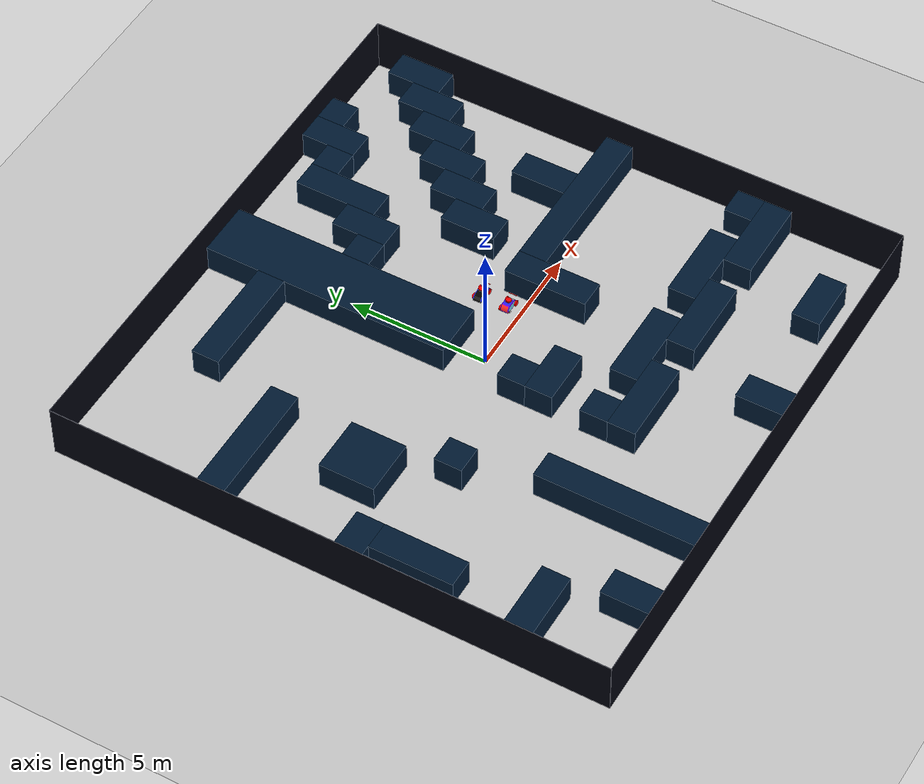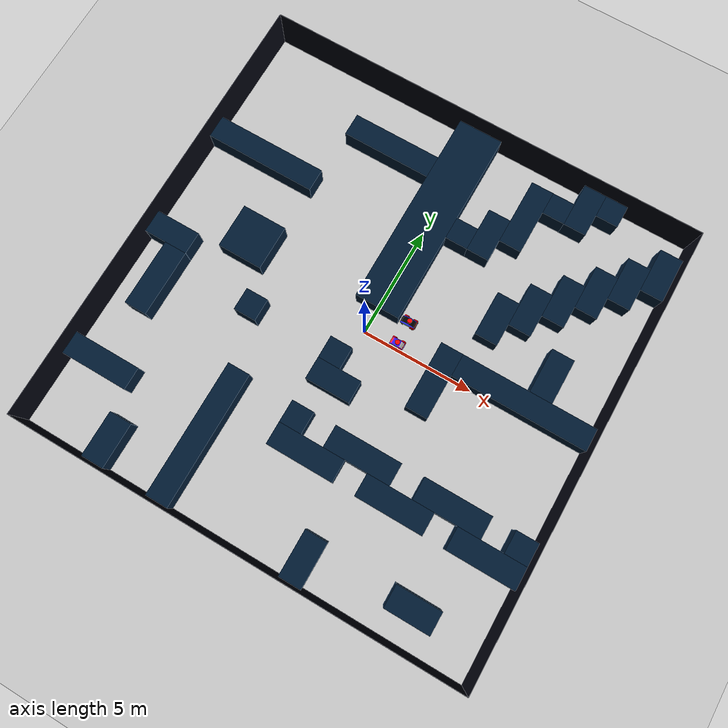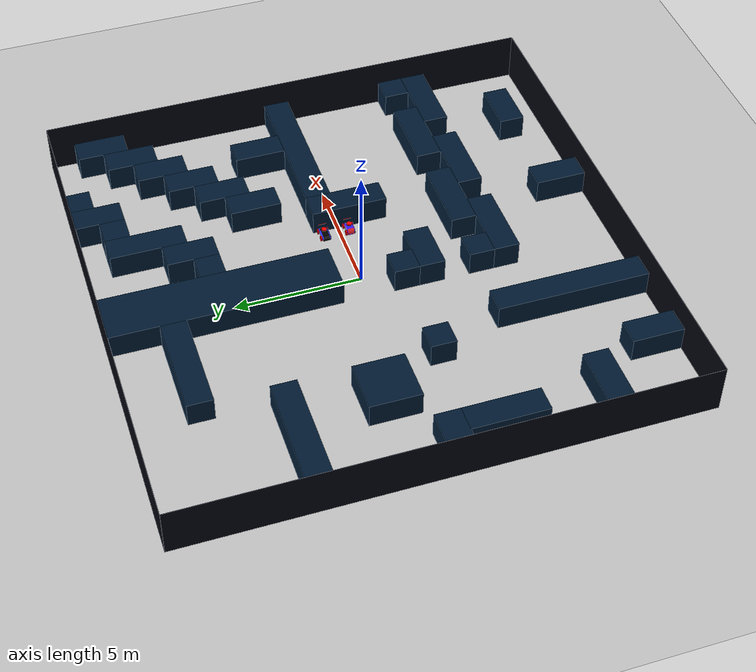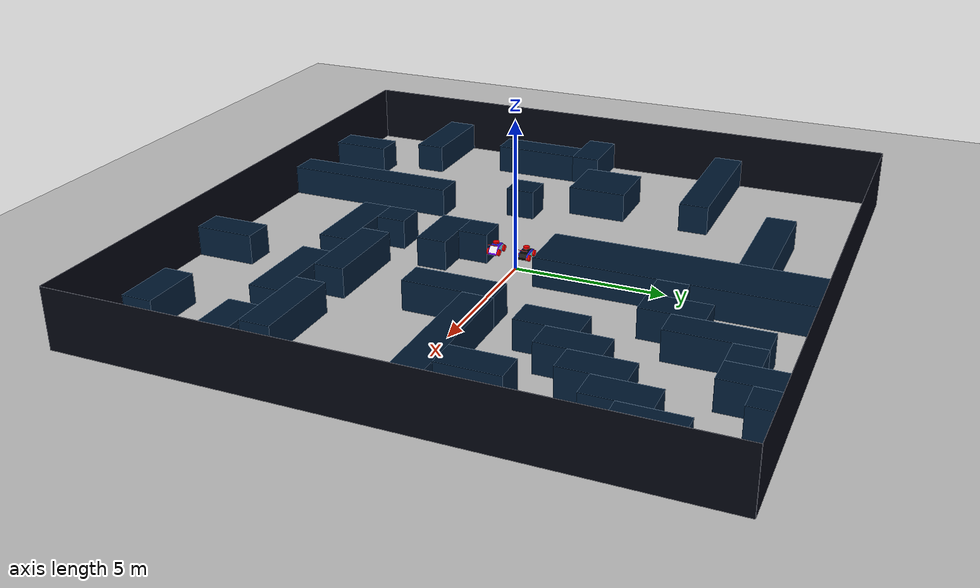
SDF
<?xml version="1.0"?>
<sdf version='1.8'>
    <world name='maze'>
        <physics name='1ms' type='ignored'>
            <max_step_size>0.003</max_step_size>
            <real_time_factor>1</real_time_factor>
            <real_time_update_rate>1000</real_time_update_rate>
        </physics>

        <plugin name="gz::sim::systems::Physics" filename="gz-sim-physics-system" />
        <plugin name="gz::sim::systems::UserCommands" filename="gz-sim-user-commands-system" />
        <plugin name="gz::sim::systems::SceneBroadcaster" filename="gz-sim-scene-broadcaster-system" />
        <plugin name="gz::sim::systems::Contact" filename="gz-sim-contact-system" />
        <plugin name="gz::sim::systems::Sensors" filename="gz-sim-sensors-system">
            <render_engine>ogre2</render_engine>
        </plugin>

        <light name='sun' type='directional'>
            <cast_shadows>1</cast_shadows>
            <pose>0 0 10 0 -0 0</pose>
            <diffuse>0.8 0.8 0.8 1</diffuse>
            <specular>0.2 0.2 0.2 1</specular>
            <attenuation>
                <range>1000</range>
                <constant>0.90000000000000002</constant>
                <linear>0.01</linear>
                <quadratic>0.001</quadratic>
            </attenuation>
            <direction>-0.5 0.1 -0.9</direction>
            <spot>
                <inner_angle>0</inner_angle>
                <outer_angle>0</outer_angle>
                <falloff>0</falloff>
            </spot>
        </light>
        <gravity>0 0 -9.8</gravity>
        <magnetic_field>6e-06 2.3e-05 -4.2e-05</magnetic_field>
        <atmosphere type='adiabatic' />
        <scene>
            <ambient>0.4 0.4 0.4 1</ambient>
            <background>0.7 0.7 0.7 1</background>
            <shadows>1</shadows>
        </scene>
        <model name='ground_plane'>
              <static>1</static>
            <link name='link'>
                <collision name='collision'>
                    <geometry>
                        <plane>
                            <normal>0 0 1</normal>
                            <size>100 100</size>
                        </plane>
                    </geometry>
                    <surface>
                        <friction>
                            <ode />
                        </friction>
                        <bounce />
                        <contact />
                    </surface>
                </collision>
                <visual name='visual'>
                    <geometry>
                        <plane>
                            <normal>0 0 1</normal>
                            <size>100 100</size>
                        </plane>
                    </geometry>
                    <material>
                        <ambient>0.8 0.8 0.8 1</ambient>
                        <diffuse>0.8 0.8 0.8 1</diffuse>
                        <specular>0.8 0.8 0.8 1</specular>
                    </material>
                </visual>
            </link>
            <pose>0 0 0 0 -0 0</pose>
        </model>

        <model name='border'>
            <pose>0 0 1 0 0 0</pose>
              <static>1</static>
            <link name='wall1'>
                <pose>-10.005 0 0 0 0 0</pose>

                <collision name='wall1_collision'>
                    <geometry>
                        <box>
                            <size>0.01 20 2</size>
                        </box>
                    </geometry>
                </collision>
                <visual name='wall1_visual'>
                    <geometry>
                        <box>
                            <size>0.01 20 2</size>
                        </box>
                    </geometry>
                    <material>
                        <ambient>0.1 0.1 0.1 1</ambient>
                        <diffuse>0 0.01 0.05 1</diffuse>
                        <specular>0 0.01 0.05 1</specular>
                    </material>
                </visual>
            </link>
            <link name='wall2'>
                <pose>10.005 0 0 0 0 0</pose>

                <collision name='wall2_collision'>
                    <geometry>
                        <box>
                            <size>0.01 20 2</size>
                        </box>
                    </geometry>
                </collision>
                <visual name='wall2_visual'>
                    <geometry>
                        <box>
                            <size>0.01 20 2</size>
                        </box>
                    </geometry>
                    <material>
                        <ambient>0.1 0.1 0.1 1</ambient>
                        <diffuse>0 0.01 0.05 1</diffuse>
                        <specular>0 0.01 0.05 1</specular>
                    </material>
                </visual>
            </link>
            <link name='wall3'>
                <pose>0 10.005 0 0 0 0</pose>

                <collision name='wall3_collision'>
                    <geometry>
                        <box>
                            <size>20 0.01 2</size>
                        </box>
                    </geometry>
                </collision>
                <visual name='wall3_visual'>
                    <geometry>
                        <box>
                            <size>20 0.01 2</size>
                        </box>
                    </geometry>
                    <material>
                        <ambient>0.1 0.1 0.1 1</ambient>
                        <diffuse>0 0.01 0.05 1</diffuse>
                        <specular>0 0.01 0.05 1</specular>
                    </material>
                </visual>
            </link>
            <link name='wall4'>
                <pose>0 -10.005 0 0 0 0</pose>

                <collision name='wall4_collision'>
                    <geometry>
                        <box>
                            <size>20 0.01 2</size>
                        </box>
                    </geometry>
                </collision>
                <visual name='wall4_visual'>
                    <geometry>
                        <box>
                            <size>20 0.01 2</size>
                        </box>
                    </geometry>
                    <material>
                        <ambient>0.1 0.1 0.1 1</ambient>
                        <diffuse>0 0.01 0.05 1</diffuse>
                        <specular>0 0.01 0.05 1</specular>
                    </material>
                </visual>
            </link>
        </model>

        <model name='obstacles'>
            <pose>0 0 0.5 0 0 0</pose>
              <static>1</static>
            <link name='wall1'>
                <pose>-6.5 -9 0 0 0 0</pose>

                <collision name='wall1_collision'>
                    <geometry>
                        <box>
                            <size>1 2 1</size>
                        </box>
                    </geometry>
                </collision>
                <visual name='wall1_visual'>
                    <geometry>
                        <box>
                            <size>1 2 1</size>
                        </box>
                    </geometry>
                    <material>
                        <ambient>0.1 0.1 0.1 1</ambient>
                        <diffuse>0 0.1 0.2 1</diffuse>
                        <specular>0 0.01 0.05 1</specular>
                    </material>
                </visual>
            </link>

            <link name='wall2'>
                <pose>-8.5 -6.5 0 0 0 0</pose>

                <collision name='wall2_collision'>
                    <geometry>
                        <box>
                            <size>3 1 1</size>
                        </box>
                    </geometry>
                </collision>
                <visual name='wall2_visual'>
                    <geometry>
                        <box>
                            <size>3 1 1</size>
                        </box>
                    </geometry>
                    <material>
                        <ambient>0.1 0.1 0.1 1</ambient>
                        <diffuse>0 0.1 0.2 1</diffuse>
                        <specular>0 0.01 0.05 1</specular>
                    </material>
                </visual>
            </link>

            <link name='wall3'>
                <pose>-3.5 -7 0 0 0 0</pose>

                <collision name='wall3_collision'>
                    <geometry>
                        <box>
                            <size>1 6 1</size>
                        </box>
                    </geometry>
                </collision>
                <visual name='wall3_visual'>
                    <geometry>
                        <box>
                            <size>1 6 1</size>
                        </box>
                    </geometry>
                    <material>
                        <ambient>0.1 0.1 0.1 1</ambient>
                        <diffuse>0 0.1 0.2 1</diffuse>
                        <specular>0 0.01 0.05 1</specular>
                    </material>
                </visual>
            </link>

            <link name='wall4'>
                <pose>2.5 -9 0 0 0 0</pose>

                <collision name='wall4_collision'>
                    <geometry>
                        <box>
                            <size>1 2 1</size>
                        </box>
                    </geometry>
                </collision>
                <visual name='wall4_visual'>
                    <geometry>
                        <box>
                            <size>1 2 1</size>
                        </box>
                    </geometry>
                    <material>
                        <ambient>0.1 0.1 0.1 1</ambient>
                        <diffuse>0 0.1 0.2 1</diffuse>
                        <specular>0 0.01 0.05 1</specular>
                    </material>
                </visual>
            </link>

            <link name='wall5'>
                <pose>7 -8.5 0 0 0 0</pose>

                <collision name='wall5_collision'>
                    <geometry>
                        <box>
                            <size>2 1 1</size>
                        </box>
                    </geometry>
                </collision>
                <visual name='wall5_visual'>
                    <geometry>
                        <box>
                            <size>2 1 1</size>
                        </box>
                    </geometry>
                    <material>
                        <ambient>0.1 0.1 0.1 1</ambient>
                        <diffuse>0 0.1 0.2 1</diffuse>
                        <specular>0 0.01 0.05 1</specular>
                    </material>
                </visual>
            </link>

            <link name='wall6'>
                <pose>-9 -0.5 0 0 0 0</pose>

                <collision name='wall6_collision'>
                    <geometry>
                        <box>
                            <size>2 1 1</size>
                        </box>
                    </geometry>
                </collision>
                <visual name='wall6_visual'>
                    <geometry>
                        <box>
                            <size>2 1 1</size>
                        </box>
                    </geometry>
                    <material>
                        <ambient>0.1 0.1 0.1 1</ambient>
                        <diffuse>0 0.1 0.2 1</diffuse>
                        <specular>0 0.01 0.05 1</specular>
                    </material>
                </visual>
            </link>

            <link name='wall7'>
                <pose>-8.5 -2.5 0 0 0 0</pose>

                <collision name='wall7_collision'>
                    <geometry>
                        <box>
                            <size>1 3 1</size>
                        </box>
                    </geometry>
                </collision>
                <visual name='wall7_visual'>
                    <geometry>
                        <box>
                            <size>1 3 1</size>
                        </box>
                    </geometry>
                    <material>
                        <ambient>0.1 0.1 0.1 1</ambient>
                        <diffuse>0 0.1 0.2 1</diffuse>
                        <specular>0 0.01 0.05 1</specular>
                    </material>
                </visual>
            </link>

            <link name='wall8'>
                <pose>-4.5 -1.5 0 0 0 0</pose>

                <collision name='wall8_collision'>
                    <geometry>
                        <box>
                            <size>1 1 1</size>
                        </box>
                    </geometry>
                </collision>
                <visual name='wall8_visual'>
                    <geometry>
                        <box>
                            <size>1 1 1</size>
                        </box>
                    </geometry>
                    <material>
                        <ambient>0.1 0.1 0.1 1</ambient>
                        <diffuse>0 0.1 0.2 1</diffuse>
                        <specular>0 0.01 0.05 1</specular>
                    </material>
                </visual>
            </link>

            <link name='wall9'>
                <pose>-6 1 0 0 0 0</pose>

                <collision name='wall9_collision'>
                    <geometry>
                        <box>
                            <size>2 2 1</size>
                        </box>
                    </geometry>
                </collision>
                <visual name='wall9_visual'>
                    <geometry>
                        <box>
                            <size>2 2 1</size>
                        </box>
                    </geometry>
                    <material>
                        <ambient>0.1 0.1 0.1 1</ambient>
                        <diffuse>0 0.1 0.2 1</diffuse>
                        <specular>0 0.01 0.05 1</specular>
                    </material>
                </visual>
            </link>

            <link name='wall10'>
                <pose>-7.5 4.5 0 0 0 0</pose>

                <collision name='wall10_collision'>
                    <geometry>
                        <box>
                            <size>5 1 1</size>
                        </box>
                    </geometry>
                </collision>
                <visual name='wall10_visual'>
                    <geometry>
                        <box>
                            <size>5 1 1</size>
                        </box>
                    </geometry>
                    <material>
                        <ambient>0.1 0.1 0.1 1</ambient>
                        <diffuse>0 0.1 0.2 1</diffuse>
                        <specular>0 0.01 0.05 1</specular>
                    </material>
                </visual>
            </link>

            <link name='wall11'>
                <pose>-3 7.5 0 0 0 0</pose>

                <collision name='wall11_collision'>
                    <geometry>
                        <box>
                            <size>4 1 1</size>
                        </box>
                    </geometry>
                </collision>
                <visual name='wall11_visual'>
                    <geometry>
                        <box>
                            <size>4 1 1</size>
                        </box>
                    </geometry>
                    <material>
                        <ambient>0.1 0.1 0.1 1</ambient>
                        <diffuse>0 0.1 0.2 1</diffuse>
                        <specular>0 0.01 0.05 1</specular>
                    </material>
                </visual>
            </link>
            <link name='wall12'>
                <pose>0 5.5 0 0 0 0</pose>

                <collision name='wall12_collision'>
                    <geometry>
                        <box>
                            <size>2 9 1</size>
                        </box>
                    </geometry>
                </collision>
                <visual name='wall12_visual'>
                    <geometry>
                        <box>
                            <size>2 9 1</size>
                        </box>
                    </geometry>
                    <material>
                        <ambient>0.1 0.1 0.1 1</ambient>
                        <diffuse>0 0.1 0.2 1</diffuse>
                        <specular>0 0.01 0.05 1</specular>
                    </material>
                </visual>
            </link>

            <link name='wall13'>
                <pose>0 -2.5 0 0 0 0</pose>

                <collision name='wall13_collision'>
                    <geometry>
                        <box>
                            <size>2 1 1</size>
                        </box>
                    </geometry>
                </collision>
                <visual name='wall13_visual'>
                    <geometry>
                        <box>
                            <size>2 1 1</size>
                        </box>
                    </geometry>
                    <material>
                        <ambient>0.1 0.1 0.1 1</ambient>
                        <diffuse>0 0.1 0.2 1</diffuse>
                        <specular>0 0.01 0.05 1</specular>
                    </material>
                </visual>
            </link>

            <link name='wall14'>
                <pose>-0.5 -1.5 0 0 0 0</pose>

                <collision name='wall14_collision'>
                    <geometry>
                        <box>
                            <size>1 1 1</size>
                        </box>
                    </geometry>
                </collision>
                <visual name='wall14_visual'>
                    <geometry>
                        <box>
                            <size>1 1 1</size>
                        </box>
                    </geometry>
                    <material>
                        <ambient>0.1 0.1 0.1 1</ambient>
                        <diffuse>0 0.1 0.2 1</diffuse>
                        <specular>0 0.01 0.05 1</specular>
                    </material>
                </visual>
            </link>

            <link name='wall15'>
                <pose>-0.5 -4.5 0 0 0 0</pose>

                <collision name='wall15_collision'>
                    <geometry>
                        <box>
                            <size>1 1 1</size>
                        </box>
                    </geometry>
                </collision>
                <visual name='wall15_visual'>
                    <geometry>
                        <box>
                            <size>1 1 1</size>
                        </box>
                    </geometry>
                    <material>
                        <ambient>0.1 0.1 0.1 1</ambient>
                        <diffuse>0 0.1 0.2 1</diffuse>
                        <specular>0 0.01 0.05 1</specular>
                    </material>
                </visual>
            </link>

            <link name='wall16'>
                <pose>0.5 -5.5 0 0 0 0</pose>

                <collision name='wall16_collision'>
                    <geometry>
                        <box>
                            <size>3 1 1</size>
                        </box>
                    </geometry>
                </collision>
                <visual name='wall16_visual'>
                    <geometry>
                        <box>
                            <size>3 1 1</size>
                        </box>
                    </geometry>
                    <material>
                        <ambient>0.1 0.1 0.1 1</ambient>
                        <diffuse>0 0.1 0.2 1</diffuse>
                        <specular>0 0.01 0.05 1</specular>
                    </material>
                </visual>
            </link>

            <link name='wall17'>
                <pose>2.5 -4.5 0 0 0 0</pose>

                <collision name='wall17_collision'>
                    <geometry>
                        <box>
                            <size>3 1 1</size>
                        </box>
                    </geometry>
                </collision>
                <visual name='wall17_visual'>
                    <geometry>
                        <box>
                            <size>3 1 1</size>
                        </box>
                    </geometry>
                    <material>
                        <ambient>0.1 0.1 0.1 1</ambient>
                        <diffuse>0 0.1 0.2 1</diffuse>
                        <specular>0 0.01 0.05 1</specular>
                    </material>
                </visual>
            </link>

            <link name='wall18'>
                <pose>4.5 -5.5 0 0 0 0</pose>

                <collision name='wall18_collision'>
                    <geometry>
                        <box>
                            <size>3 1 1</size>
                        </box>
                    </geometry>
                </collision>
                <visual name='wall18_visual'>
                    <geometry>
                        <box>
                            <size>3 1 1</size>
                        </box>
                    </geometry>
                    <material>
                        <ambient>0.1 0.1 0.1 1</ambient>
                        <diffuse>0 0.1 0.2 1</diffuse>
                        <specular>0 0.01 0.05 1</specular>
                    </material>
                </visual>
            </link>

            <link name='wall19'>
                <pose>6.5 -4.5 0 0 0 0</pose>

                <collision name='wall19_collision'>
                    <geometry>
                        <box>
                            <size>3 1 1</size>
                        </box>
                    </geometry>
                </collision>
                <visual name='wall19_visual'>
                    <geometry>
                        <box>
                            <size>3 1 1</size>
                        </box>
                    </geometry>
                    <material>
                        <ambient>0.1 0.1 0.1 1</ambient>
                        <diffuse>0 0.1 0.2 1</diffuse>
                        <specular>0 0.01 0.05 1</specular>
                    </material>
                </visual>
            </link>

            <link name='wall20'>
                <pose>8.5 -5.5 0 0 0 0</pose>

                <collision name='wall20_collision'>
                    <geometry>
                        <box>
                            <size>3 1 1</size>
                        </box>
                    </geometry>
                </collision>
                <visual name='wall20_visual'>
                    <geometry>
                        <box>
                            <size>3 1 1</size>
                        </box>
                    </geometry>
                    <material>
                        <ambient>0.1 0.1 0.1 1</ambient>
                        <diffuse>0 0.1 0.2 1</diffuse>
                        <specular>0 0.01 0.05 1</specular>
                    </material>
                </visual>
            </link>

            <link name='wall21'>
                <pose>9.5 -4.5 0 0 0 0</pose>

                <collision name='wall21_collision'>
                    <geometry>
                        <box>
                            <size>1 1 1</size>
                        </box>
                    </geometry>
                </collision>
                <visual name='wall21_visual'>
                    <geometry>
                        <box>
                            <size>1 1 1</size>
                        </box>
                    </geometry>
                    <material>
                        <ambient>0.1 0.1 0.1 1</ambient>
                        <diffuse>0 0.1 0.2 1</diffuse>
                        <specular>0 0.01 0.05 1</specular>
                    </material>
                </visual>
            </link>

            <link name='wall22'>
                <pose>3.5 -0.5 0 0 0 0</pose>

                <collision name='wall22_collision'>
                    <geometry>
                        <box>
                            <size>1 3 1</size>
                        </box>
                    </geometry>
                </collision>
                <visual name='wall22_visual'>
                    <geometry>
                        <box>
                            <size>1 3 1</size>
                        </box>
                    </geometry>
                    <material>
                        <ambient>0.1 0.1 0.1 1</ambient>
                        <diffuse>0 0.1 0.2 1</diffuse>
                        <specular>0 0.01 0.05 1</specular>
                    </material>
                </visual>
            </link>

            <link name='wall23'>
                <pose>7 0.5 0 0 0 0</pose>

                <collision name='wall23_collision'>
                    <geometry>
                        <box>
                            <size>6 1 1</size>
                        </box>
                    </geometry>
                </collision>
                <visual name='wall23_visual'>
                    <geometry>
                        <box>
                            <size>6 1 1</size>
                        </box>
                    </geometry>
                    <material>
                        <ambient>0.1 0.1 0.1 1</ambient>
                        <diffuse>0 0.1 0.2 1</diffuse>
                        <specular>0 0.01 0.05 1</specular>
                    </material>
                </visual>
            </link>

            <link name='wall24'>
                <pose>7.5 2 0 0 0 0</pose>

                <collision name='wall24_collision'>
                    <geometry>
                        <box>
                            <size>1 2 1</size>
                        </box>
                    </geometry>
                </collision>
                <visual name='wall24_visual'>
                    <geometry>
                        <box>
                            <size>1 2 1</size>
                        </box>
                    </geometry>
                    <material>
                        <ambient>0.1 0.1 0.1 1</ambient>
                        <diffuse>0 0.1 0.2 1</diffuse>
                        <specular>0 0.01 0.05 1</specular>
                    </material>
                </visual>
            </link>

            <link name='wall25'>
                <pose>1.5 5.5 0 0 0 0</pose>

                <collision name='wall25_collision'>
                    <geometry>
                        <box>
                            <size>1 1 1</size>
                        </box>
                    </geometry>
                </collision>
                <visual name='wall25_visual'>
                    <geometry>
                        <box>
                            <size>1 1 1</size>
                        </box>
                    </geometry>
                    <material>
                        <ambient>0.1 0.1 0.1 1</ambient>
                        <diffuse>0 0.1 0.2 1</diffuse>
                        <specular>0 0.01 0.05 1</specular>
                    </material>
                </visual>
            </link>

            <link name='wall26'>
                <pose>2.5 6 0 0 0 0</pose>

                <collision name='wall26_collision'>
                    <geometry>
                        <box>
                            <size>1 2 1</size>
                        </box>
                    </geometry>
                </collision>
                <visual name='wall26_visual'>
                    <geometry>
                        <box>
                            <size>1 2 1</size>
                        </box>
                    </geometry>
                    <material>
                        <ambient>0.1 0.1 0.1 1</ambient>
                        <diffuse>0 0.1 0.2 1</diffuse>
                        <specular>0 0.01 0.05 1</specular>
                    </material>
                </visual>
            </link>

            <link name='wall27'>
                <pose>3.5 7.5 0 0 0 0</pose>

                <collision name='wall27_collision'>
                    <geometry>
                        <box>
                            <size>1 3 1</size>
                        </box>
                    </geometry>
                </collision>
                <visual name='wall27_visual'>
                    <geometry>
                        <box>
                            <size>1 3 1</size>
                        </box>
                    </geometry>
                    <material>
                        <ambient>0.1 0.1 0.1 1</ambient>
                        <diffuse>0 0.1 0.2 1</diffuse>
                        <specular>0 0.01 0.05 1</specular>
                    </material>
                </visual>
            </link>

            <link name='wall28'>
                <pose>4.5 8.5 0 0 0 0</pose>

                <collision name='wall28_collision'>
                    <geometry>
                        <box>
                            <size>1 1 1</size>
                        </box>
                    </geometry>
                </collision>
                <visual name='wall28_visual'>
                    <geometry>
                        <box>
                            <size>1 1 1</size>
                        </box>
                    </geometry>
                    <material>
                        <ambient>0.1 0.1 0.1 1</ambient>
                        <diffuse>0 0.1 0.2 1</diffuse>
                        <specular>0 0.01 0.05 1</specular>
                    </material>
                </visual>
            </link>

            <link name='wall29'>
                <pose>5.5 9 0 0 0 0</pose>

                <collision name='wall29_collision'>
                    <geometry>
                        <box>
                            <size>1 2 1</size>
                        </box>
                    </geometry>
                </collision>
                <visual name='wall29_visual'>
                    <geometry>
                        <box>
                            <size>1 2 1</size>
                        </box>
                    </geometry>
                    <material>
                        <ambient>0.1 0.1 0.1 1</ambient>
                        <diffuse>0 0.1 0.2 1</diffuse>
                        <specular>0 0.01 0.05 1</specular>
                    </material>
                </visual>
            </link>

            <link name='wall30'>
                <pose>6.5 9.5 0 0 0 0</pose>

                <collision name='wall30_collision'>
                    <geometry>
                        <box>
                            <size>1 1 1</size>
                        </box>
                    </geometry>
                </collision>
                <visual name='wall30_visual'>
                    <geometry>
                        <box>
                            <size>1 1 1</size>
                        </box>
                    </geometry>
                    <material>
                        <ambient>0.1 0.1 0.1 1</ambient>
                        <diffuse>0 0.1 0.2 1</diffuse>
                        <specular>0 0.01 0.05 1</specular>
                    </material>
                </visual>
            </link>

            <link name='wall31'>
                <pose>4.5 3 0 0 0 0</pose>

                <collision name='wall31_collision'>
                    <geometry>
                        <box>
                            <size>1 2 1</size>
                        </box>
                    </geometry>
                </collision>
                <visual name='wall31_visual'>
                    <geometry>
                        <box>
                            <size>1 2 1</size>
                        </box>
                    </geometry>
                    <material>
                        <ambient>0.1 0.1 0.1 1</ambient>
                        <diffuse>0 0.1 0.2 1</diffuse>
                        <specular>0 0.01 0.05 1</specular>
                    </material>
                </visual>
            </link>

            <link name='wall32'>
                <pose>5.5 4 0 0 0 0</pose>

                <collision name='wall32_collision'>
                    <geometry>
                        <box>
                            <size>1 2 1</size>
                        </box>
                    </geometry>
                </collision>
                <visual name='wall32_visual'>
                    <geometry>
                        <box>
                            <size>1 2 1</size>
                        </box>
                    </geometry>
                    <material>
                        <ambient>0.1 0.1 0.1 1</ambient>
                        <diffuse>0 0.1 0.2 1</diffuse>
                        <specular>0 0.01 0.05 1</specular>
                    </material>
                </visual>
            </link>

            <link name='wall33'>
                <pose>6.5 5 0 0 0 0</pose>

                <collision name='wall33_collision'>
                    <geometry>
                        <box>
                            <size>1 2 1</size>
                        </box>
                    </geometry>
                </collision>
                <visual name='wall33_visual'>
                    <geometry>
                        <box>
                            <size>1 2 1</size>
                        </box>
                    </geometry>
                    <material>
                        <ambient>0.1 0.1 0.1 1</ambient>
                        <diffuse>0 0.1 0.2 1</diffuse>
                        <specular>0 0.01 0.05 1</specular>
                    </material>
                </visual>
            </link>

            <link name='wall34'>
                <pose>7.5 6 0 0 0 0</pose>

                <collision name='wall34_collision'>
                    <geometry>
                        <box>
                            <size>1 2 1</size>
                        </box>
                    </geometry>
                </collision>
                <visual name='wall34_visual'>
                    <geometry>
                        <box>
                            <size>1 2 1</size>
                        </box>
                    </geometry>
                    <material>
                        <ambient>0.1 0.1 0.1 1</ambient>
                        <diffuse>0 0.1 0.2 1</diffuse>
                        <specular>0 0.01 0.05 1</specular>
                    </material>
                </visual>
            </link>

            <link name='wall35'>
                <pose>8.5 7 0 0 0 0</pose>

                <collision name='wall35_collision'>
                    <geometry>
                        <box>
                            <size>1 2 1</size>
                        </box>
                    </geometry>
                </collision>
                <visual name='wall35_visual'>
                    <geometry>
                        <box>
                            <size>1 2 1</size>
                        </box>
                    </geometry>
                    <material>
                        <ambient>0.1 0.1 0.1 1</ambient>
                        <diffuse>0 0.1 0.2 1</diffuse>
                        <specular>0 0.01 0.05 1</specular>
                    </material>
                </visual>
            </link>

            <link name='wall36'>
                <pose>9.5 8 0 0 0 0</pose>

                <collision name='wall36_collision'>
                    <geometry>
                        <box>
                            <size>1 2 1</size>
                        </box>
                    </geometry>
                </collision>
                <visual name='wall36_visual'>
                    <geometry>
                        <box>
                            <size>1 2 1</size>
                        </box>
                    </geometry>
                    <material>
                        <ambient>0.1 0.1 0.1 1</ambient>
                        <diffuse>0 0.1 0.2 1</diffuse>
                        <specular>0 0.01 0.05 1</specular>
                    </material>
                </visual>
            </link>
        </model>

        <model name="car_mode">
            <self_collide>false</self_collide>
            <pose>1 0 1 0 0 0</pose>
            <include merge="true">
                <uri>package://car_mode/models/car.sdf</uri>
            </include>
        </model>
        <model name="joker_mode">
            <self_collide>false</self_collide>
            <pose>1 1 1 0 0 0</pose>
            <include merge="true">
                <uri>package://car_mode/models/joker.sdf</uri>
            </include>
        </model>
    </world>
</sdf>

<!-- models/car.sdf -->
<sdf version="1.8">

        <model name='Joker' canonical_link='base_link'>
            <link name='base_link'>
                <pose relative_to='__model__'>0.5 0 0.4 0 0 0</pose>
                <inertial>
                    <inertia>
                        <ixx>0.001</ixx>
                        <ixy>0.000</ixy>
                        <ixz>0.000</ixz>
                        <iyy>0.001</iyy>
                        <iyz>0.000</iyz>
                        <izz>0.001</izz>
                    </inertia>
                    <mass>0.05</mass>
                </inertial>
                <visual name='visual'>
                    <pose >0 -0.005 -0.17 0 0 0.02</pose>
                    <geometry>
                        <mesh>
                            <uri>package://car_mode/meshes/car.dae</uri>
                        </mesh>
                    </geometry>
                </visual>
                <collision name='collision'> <!--todo: describe why we need the collision-->
                    <geometry>
                        <box>
                            <size>0.6 0.3 0.25</size>
                        </box>
                    </geometry>
                </collision>
            </link>

            <link name='base_camera'>
                <pose relative_to="base_link">0.29 0 0.155 0 0 0</pose>
                <sensor name="camera" type="camera">
                    <pose relative_to='base_camera'>0.01 0 0 0 0 0</pose>
                    <always_on>true</always_on>
                    <visualize>true</visualize>
                    <update_rate>30</update_rate>
                    <topic>camera/image_raw</topic>
                    <camera name="intel_realsense_r200">
                    <horizontal_fov>1.02974</horizontal_fov>
                    <gz_frame_id>base_camera</gz_frame_id>
                    <image>
                        <width>1920</width>
                        <height>1080</height>
                        <format>R8G8B8</format>
                    </image>
                    <clip>
                        <near>0.02</near>
                        <far>300</far>
                    </clip>
                    <noise>
                        <type>gaussian</type>
                        <mean>0.0</mean>
                        <stddev>0.007</stddev>
                    </noise>
                    </camera>
                </sensor>
                <inertial>
                    <mass>0.2</mass>
                    <inertia>
                        <ixx>0.03</ixx>
                        <ixy>0</ixy>
                        <ixz>0</ixz>
                        <iyy>0.03</iyy>
                        <iyz>0</iyz>
                        <izz>0.003</izz>
                    </inertia>
                </inertial>
                <visual name='visual'>
                     <visibility_flags>0</visibility_flags>
                    <geometry>
                        <box>
                            <size>0.02 0.3 0.01</size>
                        </box>
                    </geometry>
                    <material>
                        <ambient>1.0 0.0 0.0 1</ambient>
                        <diffuse>1.0 0.0 0.0 1</diffuse>
                        <specular>1.0 0.0 0.0 1</specular>
                    </material>
                </visual>
                <collision name='collision'>
                    <geometry>
                        <box>
                            <size>0.02 0.3 0.01</size>
                        </box>
                    </geometry>
                </collision>
            </link>

            <link name='base_scan'>
                <pose relative_to="base_link">0 0 0.15 0 0 0</pose>
                <sensor name="hls_lfcd_lds" type="gpu_lidar">
                    <pose relative_to="base_scan">0 0 0.05 0 0 0</pose>
                    <topic>/scan</topic>
                    <update_rate>10</update_rate>
                    <gz_frame_id>base_scan</gz_frame_id>
                    <ray>
                    <scan>
                        <horizontal>
                        <samples>360</samples>
                        <resolution>1.000000</resolution>
                        <min_angle>0.000000</min_angle>
                        <max_angle>6.280000</max_angle>
                        </horizontal>
                    </scan>
                    <range>
                        <min>0.00001</min>
                        <max>20.0</max>
                        <resolution>0.015000</resolution>
                    </range>
                    <noise>
                        <type>gaussian</type>
                        <mean>0.0</mean>
                        <stddev>0.01</stddev>
                    </noise>
                    </ray>
                    <always_on>1</always_on>
                    <visualize>true</visualize>
                </sensor>
                <inertial>
                    <mass>0.2</mass>
                    <inertia>
                        <ixx>0.086667</ixx>
                        <ixy>0</ixy>
                        <ixz>0</ixz>
                        <iyy>0.086667</iyy>
                        <iyz>0</iyz>
                        <izz>0.16</izz>
                    </inertia>
                </inertial>
                <visual name='visual'>
                    <visibility_flags>0</visibility_flags>
                    <geometry>
                        <cylinder>
                            <radius>0.1</radius>
                            <length>0.05</length>
                        </cylinder>
                    </geometry>
                    <material>
                        <ambient>1.0 0.0 0.0 1</ambient>
                        <diffuse>1.0 0.0 0.0 1</diffuse>
                        <specular>1.0 0.0 0.0 1</specular>
                    </material>
                </visual>
                <collision name='collision'>
                    <geometry>
                        <cylinder>
                            <radius>0.1</radius>
                            <length>0.05</length>
                        </cylinder>
                    </geometry>
                </collision>
            </link>

            <!--let's build the left wheel-->
            <link name='left_back_wheel'>
                <pose relative_to="base_link">-0.2 0.175 -0.1 -1.5707 0 0</pose> <!--angles are in radian-->
                <inertial>
                    <inertia>
                        <ixx>0.001</ixx>
                        <ixy>0.000</ixy>
                        <ixz>0.000</ixz>
                        <iyy>0.001</iyy>
                        <iyz>0.000</iyz>
                        <izz>0.001</izz>
                    </inertia>
                    <mass>0.01</mass>
                </inertial>
                <visual name='visual'>
                    <visibility_flags>0</visibility_flags>
                    <geometry>
                        <cylinder>
                            <radius>0.1</radius>
                            <length>0.05</length>
                        </cylinder>
                    </geometry>
                    <material>
                        <ambient>1.0 0.0 0.0 1</ambient>
                        <diffuse>1.0 0.0 0.0 1</diffuse>
                        <specular>1.0 0.0 0.0 1</specular>
                    </material>
                </visual>
                <collision name='collision'>
                    <geometry>
                        <cylinder>
                            <radius>0.1</radius>
                            <length>0.05</length>
                        </cylinder>
                    </geometry>
                </collision>
            </link>

            <!--copy and paste for right wheel but change position -0.2 -0.175 -0.1-->
            <link name='right_back_wheel'>
                <pose relative_to="base_link">0 0 0 0 0 0</pose> <!--angles are in radian-->
                <inertial>
                    <inertia>
                        <ixx>0.001</ixx>
                        <ixy>0.000</ixy>
                        <ixz>0.000</ixz>
                        <iyy>0.001</iyy>
                        <iyz>0.000</iyz>
                        <izz>0.001</izz>
                    </inertia>
                    <mass>0.01</mass>
                </inertial>
                <visual name='visual'>
                    <visibility_flags>0</visibility_flags>
                    <geometry>
                        <cylinder>
                            <radius>0.1</radius>
                            <length>0.05</length>
                        </cylinder>
                    </geometry>
                    <material>
                        <ambient>1.0 0.0 0.0 1</ambient>
                        <diffuse>1.0 0.0 0.0 1</diffuse>
                        <specular>1.0 0.0 0.0 1</specular>
                    </material>
                </visual>
                <collision name='collision'>
                    <geometry>
                        <cylinder>
                            <radius>0.1</radius>
                            <length>0.05</length>
                        </cylinder>
                    </geometry>
                </collision>
            </link>

            <link name='left_front_wheel'>
                <pose relative_to="base_link">0.2 0.175 -0.1 -1.5707 0 0</pose> <!--angles are in radian-->
                <inertial>
                    <inertia>
                        <ixx>0.001</ixx>
                        <ixy>0.000</ixy>
                        <ixz>0.000</ixz>
                        <iyy>0.001</iyy>
                        <iyz>0.000</iyz>
                        <izz>0.001</izz>
                    </inertia>
                    <mass>0.01</mass>
                </inertial>
                <visual name='visual'>
                    <visibility_flags>0</visibility_flags>
                    <geometry>
                        <cylinder>
                            <radius>0.1</radius>
                            <length>0.05</length>
                        </cylinder>
                    </geometry>
                    <material>
                        <ambient>1.0 0.0 0.0 1</ambient>
                        <diffuse>1.0 0.0 0.0 1</diffuse>
                        <specular>1.0 0.0 0.0 1</specular>
                    </material>
                </visual>
                <collision name='collision'>
                    <geometry>
                        <cylinder>
                            <radius>0.1</radius>
                            <length>0.05</length>
                        </cylinder>
                    </geometry>
                </collision>
            </link>

            <link name='right_front_wheel'>
                <pose relative_to="base_link">0.2 -0.175 -0.1 -1.5707 0 0</pose> <!--angles are in radian-->
                <inertial>
                    <inertia>
                        <ixx>0.001</ixx>
                        <ixy>0.000</ixy>
                        <ixz>0.000</ixz>
                        <iyy>0.001</iyy>
                        <iyz>0.000</iyz>
                        <izz>0.001</izz>
                    </inertia>
                    <mass>0.01</mass>
                </inertial>
                <visual name='visual'>
                    <visibility_flags>0</visibility_flags>
                    <geometry>
                        <cylinder>
                            <radius>0.1</radius>
                            <length>0.05</length>
                        </cylinder>
                    </geometry>
                    <material>
                        <ambient>1.0 0.0 0.0 1</ambient>
                        <diffuse>1.0 0.0 0.0 1</diffuse>
                        <specular>1.0 0.0 0.0 1</specular>
                    </material>
                </visual>
                <collision name='collision'>
                    <geometry>
                        <cylinder>
                            <radius>0.1</radius>
                            <length>0.05</length>
                        </cylinder>
                    </geometry>
                </collision>
            </link>

            <joint name='camera_joint' type='fixed'>
                <pose relative_to='base_camera'/>
                <parent>base_link</parent>
                <child>base_camera</child>
                <axis>
                    <xyz>1 0 0</xyz>

                </axis>
            </joint>

            <joint name='scan_joint' type='fixed'>
                <pose relative_to='base_scan'/>
                <parent>base_link</parent>
                <child>base_scan</child>
                <axis>
                    <xyz >1 0 0</xyz>
                </axis>
            </joint>

            <!--connecting these links together using joints-->
            <joint name='left_back_joint' type='revolute'> <!--continous joint is not supported yet-->
                <pose relative_to='left_back_wheel'/>
                <parent>base_link</parent>
                <child>left_back_wheel</child>
                <axis>
                    <xyz >0 0 1</xyz> <!--can be defined as any frame or even arbitrary frames-->
                </axis>
            </joint>

            <joint name='right_back_joint' type='revolute'>
                <pose relative_to='right_back_wheel'/>
                <parent>base_link</parent>
                <child>right_back_wheel</child>
                <axis>
                    <xyz>0 1 0</xyz>
                </axis>
            </joint>

            <joint name='left_front_joint' type='revolute'> <!--continous joint is not supported yet-->
                <pose relative_to='left_front_wheel'/>
                <parent>base_link</parent>
                <child>left_front_wheel</child>
                <axis>
                    <xyz>0 0 1</xyz>
                </axis>
            </joint>

            <joint name='right_front_joint' type='revolute'>
                <pose relative_to='right_front_wheel'/>
                <parent>base_link</parent>
                <child>right_front_wheel</child>
                <axis>
                    <xyz>0 0 1</xyz>
                </axis>
            </joint>
            <plugin
                filename="gz-sim-diff-drive-system"
                name="gz::sim::systems::DiffDrive">
                <left_joint>left_front_joint</left_joint>
                <right_joint>right_front_joint</right_joint>
                <left_joint>left_back_joint</left_joint>
                <right_joint>right_back_joint</right_joint>
                <wheel_separation>0.35</wheel_separation>
                <wheel_radius>0.1</wheel_radius>
                <max_linear_acceleration>1</max_linear_acceleration>
                <min_linear_acceleration>-1</min_linear_acceleration>
                <max_angular_acceleration>5</max_angular_acceleration>
                <min_angular_acceleration>-5</min_angular_acceleration>
                <max_linear_velocity>0.46</max_linear_velocity>
                <min_linear_velocity>-0.46</min_linear_velocity>
                <max_angular_velocity>7.0</max_angular_velocity>
                <min_angular_velocity>-7.0</min_angular_velocity>
                <topic>cmd_vel</topic>
                <odom_topic>/odom</odom_topic>
                <tf_topic>/tf</tf_topic>
                <frame_id>odom</frame_id>
                <child_frame_id>base_link</child_frame_id>
                <odom_publish_frequency>30</odom_publish_frequency>
            </plugin>

            <plugin
                filename="gz-sim-joint-state-publisher-system"
                name="gz::sim::systems::JointStatePublisher">
                <topic>/joint_states</topic>
                <update_rate>30</update_rate>
            </plugin>
        </model>
</sdf>

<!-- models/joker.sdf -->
<sdf version="1.8">

        <model name='Joker' canonical_link='base_link'>
            <link name='base_link'>
                <pose relative_to='__model__'>0.5 0 0.4 0 0 0</pose>
                <inertial>
                    <inertia>
                        <ixx>0.001</ixx>
                        <ixy>0.000</ixy>
                        <ixz>0.000</ixz>
                        <iyy>0.001</iyy>
                        <iyz>0.000</iyz>
                        <izz>0.001</izz>
                    </inertia>
                    <mass>0.05</mass>
                </inertial>
                <visual name='visual'>
                    <pose >0 -0.005 -0.17 0 0 0.02</pose>
                    <geometry>
                        <mesh>
                            <uri>package://car_mode/meshes/Joker.dae</uri>
                        </mesh>
                    </geometry>
                </visual>
                <collision name='collision'> <!--todo: describe why we need the collision-->
                    <geometry>
                        <box>
                            <size>0.6 0.3 0.25</size>
                        </box>
                    </geometry>
                </collision>
            </link>

            <link name='base_camera'>
                <pose relative_to="base_link">0.29 0 0.155 0 0 0</pose>
                <sensor name="camera" type="camera">
                    <pose relative_to='base_camera'>0.01 0 0 0 0 0</pose>
                    <always_on>true</always_on>
                    <visualize>true</visualize>
                    <update_rate>30</update_rate>
                    <topic>camera/image_raw</topic>
                    <camera name="intel_realsense_r200">
                    <horizontal_fov>1.02974</horizontal_fov>
                    <gz_frame_id>base_camera</gz_frame_id>
                    <image>
                        <width>1920</width>
                        <height>1080</height>
                        <format>R8G8B8</format>
                    </image>
                    <clip>
                        <near>0.02</near>
                        <far>300</far>
                    </clip>
                    <noise>
                        <type>gaussian</type>
                        <mean>0.0</mean>
                        <stddev>0.007</stddev>
                    </noise>
                    </camera>
                </sensor>
                <inertial>
                    <mass>0.2</mass>
                    <inertia>
                        <ixx>0.03</ixx>
                        <ixy>0</ixy>
                        <ixz>0</ixz>
                        <iyy>0.03</iyy>
                        <iyz>0</iyz>
                        <izz>0.003</izz>
                    </inertia>
                </inertial>
                <visual name='visual'>
                     <visibility_flags>0</visibility_flags>
                    <geometry>
                        <box>
                            <size>0.02 0.3 0.01</size>
                        </box>
                    </geometry>
                    <material>
                        <ambient>1.0 0.0 0.0 1</ambient>
                        <diffuse>1.0 0.0 0.0 1</diffuse>
                        <specular>1.0 0.0 0.0 1</specular>
                    </material>
                </visual>
                <collision name='collision'>
                    <geometry>
                        <box>
                            <size>0.02 0.3 0.01</size>
                        </box>
                    </geometry>
                </collision>
            </link>

            <link name='base_scan'>
                <pose relative_to="base_link">0 0 0.15 0 0 0</pose>
                <sensor name="hls_lfcd_lds" type="gpu_lidar">
                    <pose relative_to="base_scan">0 0 0.05 0 0 0</pose>
                    <topic>/scan</topic>
                    <update_rate>10</update_rate>
                    <gz_frame_id>base_scan</gz_frame_id>
                    <ray>
                    <scan>
                        <horizontal>
                        <samples>360</samples>
                        <resolution>1.000000</resolution>
                        <min_angle>0.000000</min_angle>
                        <max_angle>6.280000</max_angle>
                        </horizontal>
                    </scan>
                    <range>
                        <min>0.00001</min>
                        <max>20.0</max>
                        <resolution>0.015000</resolution>
                    </range>
                    <noise>
                        <type>gaussian</type>
                        <mean>0.0</mean>
                        <stddev>0.01</stddev>
                    </noise>
                    </ray>
                    <always_on>1</always_on>
                    <visualize>true</visualize>
                </sensor>
                <inertial>
                    <mass>0.2</mass>
                    <inertia>
                        <ixx>0.086667</ixx>
                        <ixy>0</ixy>
                        <ixz>0</ixz>
                        <iyy>0.086667</iyy>
                        <iyz>0</iyz>
                        <izz>0.16</izz>
                    </inertia>
                </inertial>
                <visual name='visual'>
                    <visibility_flags>0</visibility_flags>
                    <geometry>
                        <cylinder>
                            <radius>0.1</radius>
                            <length>0.05</length>
                        </cylinder>
                    </geometry>
                    <material>
                        <ambient>1.0 0.0 0.0 1</ambient>
                        <diffuse>1.0 0.0 0.0 1</diffuse>
                        <specular>1.0 0.0 0.0 1</specular>
                    </material>
                </visual>
                <collision name='collision'>
                    <geometry>
                        <cylinder>
                            <radius>0.1</radius>
                            <length>0.05</length>
                        </cylinder>
                    </geometry>
                </collision>
            </link>

            <!--let's build the left wheel-->
            <link name='left_back_wheel'>
                <pose relative_to="base_link">-0.2 0.175 -0.1 -1.5707 0 0</pose> <!--angles are in radian-->
                <inertial>
                    <inertia>
                        <ixx>0.001</ixx>
                        <ixy>0.000</ixy>
                        <ixz>0.000</ixz>
                        <iyy>0.001</iyy>
                        <iyz>0.000</iyz>
                        <izz>0.001</izz>
                    </inertia>
                    <mass>0.01</mass>
                </inertial>
                <visual name='visual'>
                    <visibility_flags>0</visibility_flags>
                    <geometry>
                        <cylinder>
                            <radius>0.1</radius>
                            <length>0.05</length>
                        </cylinder>
                    </geometry>
                    <material>
                        <ambient>1.0 0.0 0.0 1</ambient>
                        <diffuse>1.0 0.0 0.0 1</diffuse>
                        <specular>1.0 0.0 0.0 1</specular>
                    </material>
                </visual>
                <collision name='collision'>
                    <geometry>
                        <cylinder>
                            <radius>0.1</radius>
                            <length>0.05</length>
                        </cylinder>
                    </geometry>
                </collision>
            </link>

            <!--copy and paste for right wheel but change position -0.2 -0.175 -0.1-->
            <link name='right_back_wheel'>
                <pose relative_to="base_link">0 0 0 0 0 0</pose> <!--angles are in radian-->
                <inertial>
                    <inertia>
                        <ixx>0.001</ixx>
                        <ixy>0.000</ixy>
                        <ixz>0.000</ixz>
                        <iyy>0.001</iyy>
                        <iyz>0.000</iyz>
                        <izz>0.001</izz>
                    </inertia>
                    <mass>0.01</mass>
                </inertial>
                <visual name='visual'>
                    <visibility_flags>0</visibility_flags>
                    <geometry>
                        <cylinder>
                            <radius>0.1</radius>
                            <length>0.05</length>
                        </cylinder>
                    </geometry>
                    <material>
                        <ambient>1.0 0.0 0.0 1</ambient>
                        <diffuse>1.0 0.0 0.0 1</diffuse>
                        <specular>1.0 0.0 0.0 1</specular>
                    </material>
                </visual>
                <collision name='collision'>
                    <geometry>
                        <cylinder>
                            <radius>0.1</radius>
                            <length>0.05</length>
                        </cylinder>
                    </geometry>
                </collision>
            </link>

            <link name='left_front_wheel'>
                <pose relative_to="base_link">0.2 0.175 -0.1 -1.5707 0 0</pose> <!--angles are in radian-->
                <inertial>
                    <inertia>
                        <ixx>0.001</ixx>
                        <ixy>0.000</ixy>
                        <ixz>0.000</ixz>
                        <iyy>0.001</iyy>
                        <iyz>0.000</iyz>
                        <izz>0.001</izz>
                    </inertia>
                    <mass>0.01</mass>
                </inertial>
                <visual name='visual'>
                    <visibility_flags>0</visibility_flags>
                    <geometry>
                        <cylinder>
                            <radius>0.1</radius>
                            <length>0.05</length>
                        </cylinder>
                    </geometry>
                    <material>
                        <ambient>1.0 0.0 0.0 1</ambient>
                        <diffuse>1.0 0.0 0.0 1</diffuse>
                        <specular>1.0 0.0 0.0 1</specular>
                    </material>
                </visual>
                <collision name='collision'>
                    <geometry>
                        <cylinder>
                            <radius>0.1</radius>
                            <length>0.05</length>
                        </cylinder>
                    </geometry>
                </collision>
            </link>

            <link name='right_front_wheel'>
                <pose relative_to="base_link">0.2 -0.175 -0.1 -1.5707 0 0</pose> <!--angles are in radian-->
                <inertial>
                    <inertia>
                        <ixx>0.001</ixx>
                        <ixy>0.000</ixy>
                        <ixz>0.000</ixz>
                        <iyy>0.001</iyy>
                        <iyz>0.000</iyz>
                        <izz>0.001</izz>
                    </inertia>
                    <mass>0.01</mass>
                </inertial>
                <visual name='visual'>
                    <visibility_flags>0</visibility_flags>
                    <geometry>
                        <cylinder>
                            <radius>0.1</radius>
                            <length>0.05</length>
                        </cylinder>
                    </geometry>
                    <material>
                        <ambient>1.0 0.0 0.0 1</ambient>
                        <diffuse>1.0 0.0 0.0 1</diffuse>
                        <specular>1.0 0.0 0.0 1</specular>
                    </material>
                </visual>
                <collision name='collision'>
                    <geometry>
                        <cylinder>
                            <radius>0.1</radius>
                            <length>0.05</length>
                        </cylinder>
                    </geometry>
                </collision>
            </link>

            <joint name='camera_joint' type='fixed'>
                <pose relative_to='base_camera'/>
                <parent>base_link</parent>
                <child>base_camera</child>
                <axis>
                    <xyz>1 0 0</xyz>

                </axis>
            </joint>

            <joint name='scan_joint' type='fixed'>
                <pose relative_to='base_scan'/>
                <parent>base_link</parent>
                <child>base_scan</child>
                <axis>
                    <xyz >1 0 0</xyz>
                </axis>
            </joint>

            <!--connecting these links together using joints-->
            <joint name='left_back_joint' type='revolute'> <!--continous joint is not supported yet-->
                <pose relative_to='left_back_wheel'/>
                <parent>base_link</parent>
                <child>left_back_wheel</child>
                <axis>
                    <xyz >0 0 1</xyz> <!--can be defined as any frame or even arbitrary frames-->
                </axis>
            </joint>

            <joint name='right_back_joint' type='revolute'>
                <pose relative_to='right_back_wheel'/>
                <parent>base_link</parent>
                <child>right_back_wheel</child>
                <axis>
                    <xyz>0 1 0</xyz>
                </axis>
            </joint>

            <joint name='left_front_joint' type='revolute'> <!--continous joint is not supported yet-->
                <pose relative_to='left_front_wheel'/>
                <parent>base_link</parent>
                <child>left_front_wheel</child>
                <axis>
                    <xyz>0 0 1</xyz>
                </axis>
            </joint>

            <joint name='right_front_joint' type='revolute'>
                <pose relative_to='right_front_wheel'/>
                <parent>base_link</parent>
                <child>right_front_wheel</child>
                <axis>
                    <xyz>0 0 1</xyz>
                </axis>
            </joint>
            <plugin
                filename="gz-sim-diff-drive-system"
                name="gz::sim::systems::DiffDrive">
                <left_joint>left_front_joint</left_joint>
                <right_joint>right_front_joint</right_joint>
                <left_joint>left_back_joint</left_joint>
                <right_joint>right_back_joint</right_joint>
                <wheel_separation>0.35</wheel_separation>
                <wheel_radius>0.1</wheel_radius>
                <max_linear_acceleration>1</max_linear_acceleration>
                <min_linear_acceleration>-1</min_linear_acceleration>
                <max_angular_acceleration>5</max_angular_acceleration>
                <min_angular_acceleration>-5</min_angular_acceleration>
                <max_linear_velocity>0.46</max_linear_velocity>
                <min_linear_velocity>-0.46</min_linear_velocity>
                <max_angular_velocity>7.0</max_angular_velocity>
                <min_angular_velocity>-7.0</min_angular_velocity>
                <topic>cmd_vel</topic>
                <odom_topic>/odom</odom_topic>
                <tf_topic>/tf</tf_topic>
                <frame_id>odom</frame_id>
                <child_frame_id>base_link</child_frame_id>
                <odom_publish_frequency>30</odom_publish_frequency>
            </plugin>

            <plugin
                filename="gz-sim-joint-state-publisher-system"
                name="gz::sim::systems::JointStatePublisher">
                <topic>/joint_states</topic>
                <update_rate>30</update_rate>
            </plugin>
        </model>
</sdf>
